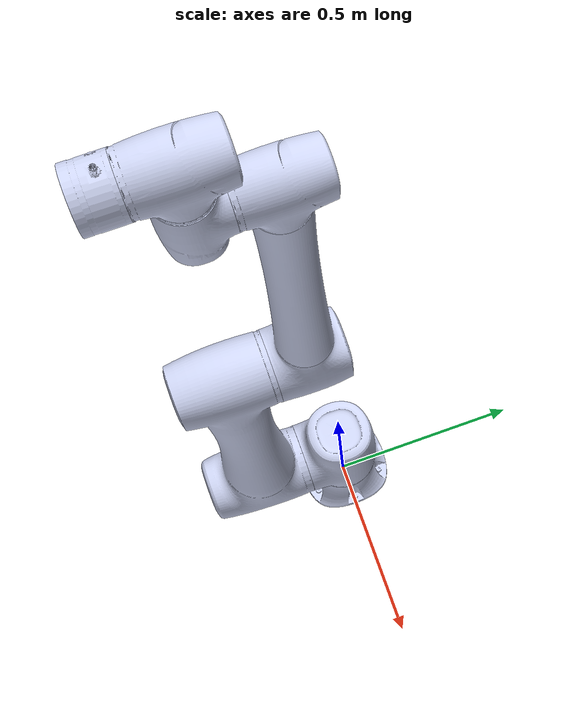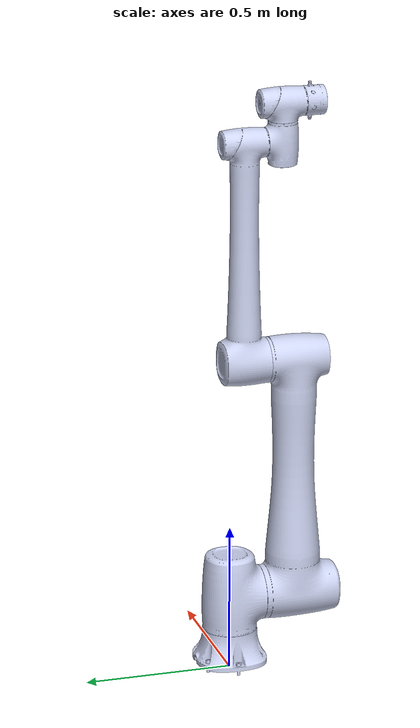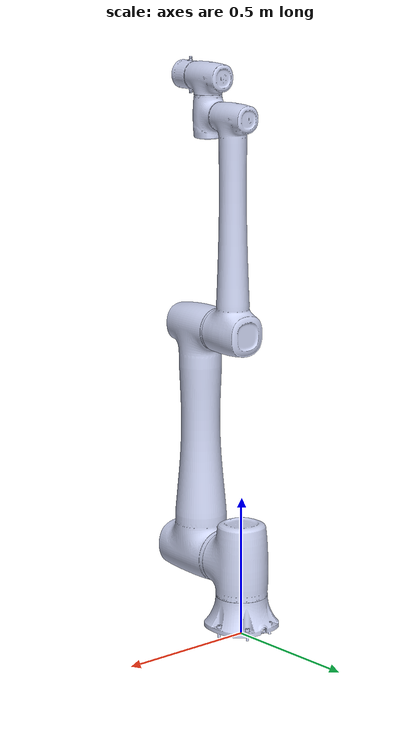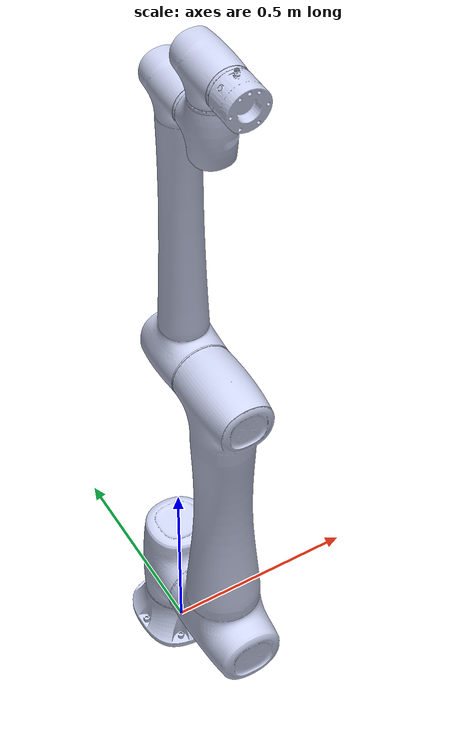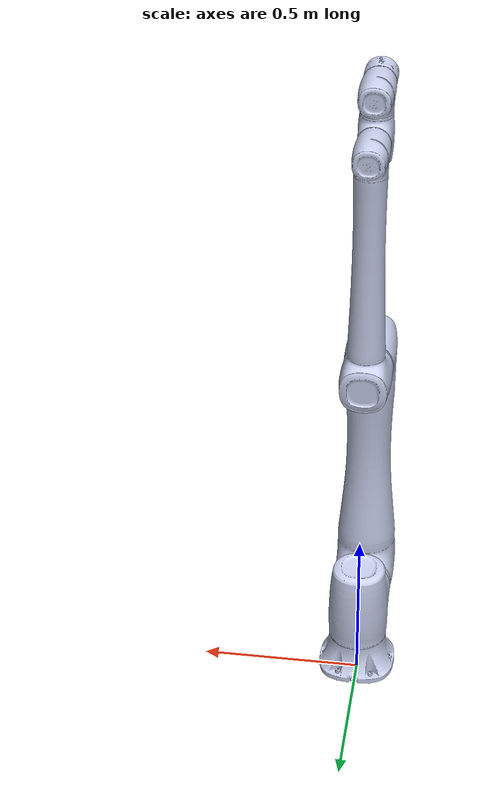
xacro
<?xml version="1.0" encoding="utf-8"?>
<robot
  name="cr20_robot" xmlns:xacro="http://ros.org/wiki/xacro">
  <link name="dummy_link"/>
  <link
    name="base_link">
    <inertial>
      <origin
        xyz="-0.0523349568972135 0.0899270486094572 -0.00279275668479641"
        rpy="0 0 0" />
      <mass
        value="0.00264393848129463" />
      <inertia
        ixx="0"
        ixy="0"
        ixz="0"
        iyy="0"
        iyz="0"
        izz="0" />
    </inertial>
    <visual>
      <origin
        xyz="0 0 0"
        rpy="0 0 0" />
      <geometry>
        <mesh
          filename="file://$(find cra_description)/meshes/cr20/base_link.STL" />
      </geometry>
      <material
        name="">
        <color
          rgba="0.792156862745098 0.819607843137255 0.933333333333333 1" />
      </material>
    </visual>
    <collision>
      <origin
        xyz="0 0 0"
        rpy="0 0 0" />
      <geometry>
        <mesh
          filename="file://$(find cra_description)/meshes/cr20/base_link.STL" />
      </geometry>
    </collision>
  </link>
    <link  name="world"/>
  <joint name="world_joint" type="fixed">
    <origin xyz="0 0 0.03" rpy="0 0 0" />
    <parent link="world" />
    <child  link="dummy_link" />
  </joint>
  <joint name="dummy_joint" type="fixed">
    <parent link="dummy_link" />
    <child  link="base_link" />
  </joint>
  <link
    name="Link1">
    <inertial>
      <origin
        xyz="-0.0154576425326206 -0.0986375365415087 1.04119647925812"
        rpy="0 0 0" />
      <mass
        value="0.00895254328755396" />
      <inertia
        ixx="0"
        ixy="0"
        ixz="0"
        iyy="0"
        iyz="0"
        izz="0" />
    </inertial>
    <visual>
      <origin
        xyz="0 0 0"
        rpy="0 0 0" />
      <geometry>
        <mesh
          filename="file://$(find cra_description)/meshes/cr20/Link1.STL" />
      </geometry>
      <material
        name="">
        <color
          rgba="0.792156862745098 0.819607843137255 0.933333333333333 1" />
      </material>
    </visual>
    <collision>
      <origin
        xyz="0 0 0"
        rpy="0 0 0" />
      <geometry>
        <mesh
          filename="file://$(find cra_description)/meshes/cr20/Link1.STL" />
      </geometry>
    </collision>
  </link>
  <joint
    name="joint1"
    type="revolute">
    <origin
      xyz="0 0 0.23"
      rpy="0 0 0" />
    <parent
      link="base_link" />
    <child
      link="Link1" />
    <axis
      xyz="0 0 1" />
    <limit
      lower="-6.28"
      upper="6.28"
      effort="300"
      velocity="3.14" />
  </joint>
  <link
    name="Link2">
    <inertial>
      <origin
        xyz="-0.828898669983325 -3.97165169431493E-07 0.115283168336158"
        rpy="0 0 0" />
      <mass
        value="0.000499668330610696" />
      <inertia
        ixx="0"
        ixy="0"
        ixz="0"
        iyy="0"
        iyz="0"
        izz="0" />
    </inertial>
    <visual>
      <origin
        xyz="0 0 0"
        rpy="0 0 0" />
      <geometry>
        <mesh
          filename="file://$(find cra_description)/meshes/cr20/Link2.STL" />
      </geometry>
      <material
        name="">
        <color
          rgba="0.792156862745098 0.819607843137255 0.933333333333333 1" />
      </material>
    </visual>
    <collision>
      <origin
        xyz="0 0 0"
        rpy="0 0 0" />
      <geometry>
        <mesh
          filename="file://$(find cra_description)/meshes/cr20/Link2.STL" />
      </geometry>
    </collision>
  </link>
  <joint
    name="joint2"
    type="revolute">
    <origin
      xyz="0 0 0"
      rpy="1.5708 1.5708 0" />
    <parent
      link="Link1" />
    <child
      link="Link2" />
    <axis
      xyz="0 0 1" />
    <limit
      lower="-6.28"
      upper="6.28"
      effort="300"
      velocity="3.14" />
  </joint>
  <link
    name="Link3">
    <inertial>
      <origin
        xyz="-0.746000007821945 1.07337005127015E-07 0.0757301295800403"
        rpy="0 0 0" />
      <mass
        value="0.00188731016390733" />
      <inertia
        ixx="0"
        ixy="0"
        ixz="0"
        iyy="0"
        iyz="0"
        izz="0" />
    </inertial>
    <visual>
      <origin
        xyz="0 0 0"
        rpy="0 0 0" />
      <geometry>
        <mesh
          filename="file://$(find cra_description)/meshes/cr20/Link3.STL" />
      </geometry>
      <material
        name="">
        <color
          rgba="0.792156862745098 0.819607843137255 0.933333333333333 1" />
      </material>
    </visual>
    <collision>
      <origin
        xyz="0 0 0"
        rpy="0 0 0" />
      <geometry>
        <mesh
          filename="file://$(find cra_description)/meshes/cr20/Link3.STL" />
      </geometry>
    </collision>
  </link>
  <joint
    name="joint3"
    type="revolute">
    <origin
      xyz="-0.8252 0 0.0468"
      rpy="0 0 0" />
    <parent
      link="Link2" />
    <child
      link="Link3" />
    <axis
      xyz="0 0 1" />
    <limit
      lower="-2.9"
      upper="2.9"
      effort="300"
      velocity="3.14" />
  </joint>
  <link
    name="Link4">
    <inertial>
      <origin
        xyz="1.09076486456641E-07 -0.0757301256894509 1.20551504334543E-08"
        rpy="0 0 0" />
      <mass
        value="0.00188731016585712" />
      <inertia
        ixx="0"
        ixy="0"
        ixz="0"
        iyy="0"
        iyz="0"
        izz="0" />
    </inertial>
    <visual>
      <origin
        xyz="0 0 0"
        rpy="0 0 0" />
      <geometry>
        <mesh
          filename="file://$(find cra_description)/meshes/cr20/Link4.STL" />
      </geometry>
      <material
        name="">
        <color
          rgba="0.792156862745098 0.819607843137255 0.933333333333333 1" />
      </material>
    </visual>
    <collision>
      <origin
        xyz="0 0 0"
        rpy="0 0 0" />
      <geometry>
        <mesh
          filename="file://$(find cra_description)/meshes/cr20/Link4.STL" />
      </geometry>
    </collision>
  </link>
  <joint
    name="joint4"
    type="revolute">
    <origin
      xyz="-0.746 0 0.1288"
      rpy="0 0 -1.5708" />
    <parent
      link="Link3" />
    <child
      link="Link4" />
    <axis
      xyz="0 0 1" />
    <limit
      lower="-6.28"
      upper="6.28"
      effort="300"
      velocity="3.14" />
  </joint>
  <link
    name="Link5">
    <inertial>
      <origin
        xyz="-1.06334234349293E-07 0.075730132822537 4.0368623999143E-09"
        rpy="0 0 0" />
      <mass
        value="0.00188731016390721" />
      <inertia
        ixx="0"
        ixy="0"
        ixz="0"
        iyy="0"
        iyz="0"
        izz="0" />
    </inertial>
    <visual>
      <origin
        xyz="0 0 0"
        rpy="0 0 0" />
      <geometry>
        <mesh
          filename="file://$(find cra_description)/meshes/cr20/Link5.STL" />
      </geometry>
      <material
        name="">
        <color
          rgba="0.792156862745098 0.819607843137255 0.933333333333333 1" />
      </material>
    </visual>
    <collision>
      <origin
        xyz="0 0 0"
        rpy="0 0 0" />
      <geometry>
        <mesh
          filename="file://$(find cra_description)/meshes/cr20/Link5.STL" />
      </geometry>
    </collision>
  </link>
  <joint
    name="joint5"
    type="revolute">
    <origin
      xyz="0 -0.1288 0"
      rpy="1.5708 0 0" />
    <parent
      link="Link4" />
    <child
      link="Link5" />
    <axis
      xyz="0 0 1" />
    <limit
      lower="-6.28"
      upper="6.28"
      effort="300"
      velocity="3.14" />
  </joint>
  <link
    name="Link6">
    <inertial>
      <origin
        xyz="0.0154576401891996 0.658802608062882 -0.213462466800391"
        rpy="0 0 0" />
      <mass
        value="0.00895254328755396" />
      <inertia
        ixx="0"
        ixy="0"
        ixz="0"
        iyy="0"
        iyz="0"
        izz="0" />
    </inertial>
    <visual>
      <origin
        xyz="0 0 0"
        rpy="0 0 0" />
      <geometry>
        <mesh
          filename="file://$(find cra_description)/meshes/cr20/Link6.STL" />
      </geometry>
      <material
        name="">
        <color
          rgba="0.792156862745098 0.819607843137255 0.933333333333333 1" />
      </material>
    </visual>
    <collision>
      <origin
        xyz="0 0 0"
        rpy="0 0 0" />
      <geometry>
        <mesh
          filename="file://$(find cra_description)/meshes/cr20/Link6.STL" />
      </geometry>
    </collision>
  </link>
  <joint
    name="joint6"
    type="revolute">
    <origin
      xyz="0 0.1365 0"
      rpy="-1.5708 0 0" />
    <parent
      link="Link5" />
    <child
      link="Link6" />
    <axis
      xyz="0 0 1" />
    <limit
      lower="-6.28"
      upper="6.28"
      effort="300"
      velocity="3.14" />
  </joint>
    <gazebo reference="Link1">
        <gravity>false</gravity>
        <selfCollide>true</selfCollide>
    </gazebo>
    <gazebo reference="Link2">
        <gravity>false</gravity>
        <selfCollide>true</selfCollide>
    </gazebo>
    <gazebo reference="Link3">
        <gravity>false</gravity>
        <selfCollide>true</selfCollide>
    </gazebo>
    <gazebo reference="Link4">
        <gravity>false</gravity>
        <selfCollide>true</selfCollide>
    </gazebo>
    <gazebo reference="Link5">
        <gravity>false</gravity>
        <selfCollide>true</selfCollide>
    </gazebo>
    <gazebo reference="Link6">
        <gravity>false</gravity>
        <selfCollide>true</selfCollide>
    </gazebo>
    <!-- 在运行demo.launch.py时，需要注释这个ros2_control节点，因为它使用了xxx.ros2_control.xacro来生成了ros2_control节点-->
    <ros2_control name="GazeboSystem" type="system">
        <hardware>
            <plugin>gz_ros2_control/GazeboSimSystem</plugin>
        </hardware>
        <joint name="joint1">
            <command_interface name="position">
                <param name="min">-1</param>
                <param name="max">1</param>
            </command_interface>
            <state_interface name="position">
                <param name="initial_value">0.0</param>
            </state_interface>
            <state_interface name="velocity"/>
        </joint>
        <joint name="joint2">
            <command_interface name="position">
                <param name="min">-1</param>
                <param name="max">1</param>
            </command_interface>
            <state_interface name="position">
                <param name="initial_value">0.0</param>
            </state_interface>
            <state_interface name="velocity"/>
        </joint>
        <joint name="joint3">
            <command_interface name="position">
                <param name="min">-1</param>
                <param name="max">1</param>
            </command_interface>
            <state_interface name="position">
                <param name="initial_value">0.0</param>
            </state_interface>
            <state_interface name="velocity"/>
        </joint>
        <joint name="joint4">
            <command_interface name="position">
                <param name="min">-1</param>
                <param name="max">1</param>
            </command_interface>
            <state_interface name="position">
                <param name="initial_value">0.0</param>
            </state_interface>
            <state_interface name="velocity"/>
        </joint>
        <joint name="joint5">
            <command_interface name="position">
                <param name="min">-1</param>
                <param name="max">1</param>
            </command_interface>
            <state_interface name="position">
                <param name="initial_value">0.0</param>
            </state_interface>
            <state_interface name="velocity"/>
        </joint>
        <joint name="joint6">
            <command_interface name="position">
                <param name="min">-1</param>
                <param name="max">1</param>
            </command_interface>
            <state_interface name="position">
                <param name="initial_value">0.0</param>
            </state_interface>
            <state_interface name="velocity"/>
        </joint>
    </ros2_control>

    <gazebo>
        <plugin filename="gz_ros2_control-system" name="gz_ros2_control::GazeboSimROS2ControlPlugin">
            <parameters>$(find cr20_moveit)/config/ros2_controllers.yaml</parameters>
            <robot_param_node>robot_state_publisher</robot_param_node>
        </plugin>
    </gazebo>
</robot>
